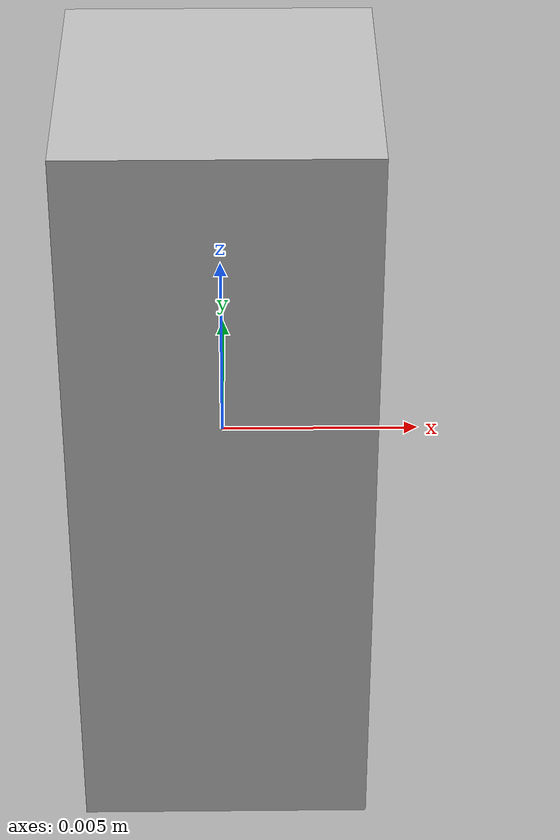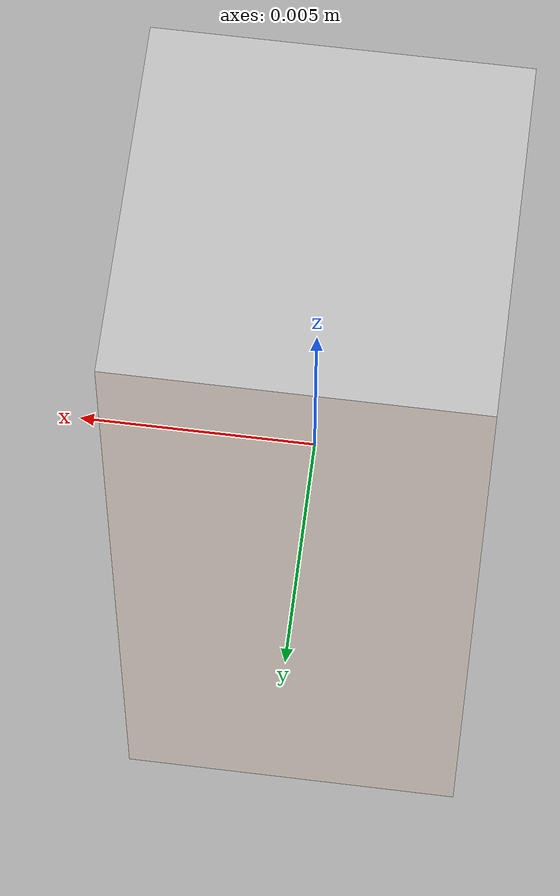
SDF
<?xml version="1.0" ?>
<sdf version="1.7">
  <model name="kingW">
    <static>0</static>
    <link name="link">

      <inertial>
        <mass>6.25</mass>
        <inertia>
          <ixx>0.046875</ixx>
          <ixy>0.0</ixy>
          <ixz>0.0</ixz>
          <iyy>0.046875</iyy>
          <iyz>0.0</iyz>
          <izz>0.03375</izz>
        </inertia>
      </inertial>

      <collision name="collision">
        <pose>0 0 0.3 0 0 0</pose>
          <geometry>
            <box>
              <size>0.15 0.15 0.6</size>
            </box>
          </geometry>
          <surface>
            <friction>
              <ode>
                <mu>30.0</mu>
                <mu2>30.0</mu2>
                <fdir1>0 0 0</fdir1>
              </ode>
            </friction>
            <contact>
              <ode>
                <kp>1000.0</kp>
                <kd>100.0</kd>
                <min_depth>0.001</min_depth>
                <max_vel>0.001</max_vel>
              </ode>
            </contact>
          </surface>
      </collision>

      <visual name="visual1">
        <pose>0 0 0 0 0 0</pose>
        <geometry>
          <mesh>
             <uri>model://kingW/meshes/kingW.dae</uri>
    		<!-- mesh scaled up 5x to reach 0.15m diameter from ~0.03m -->
	    <scale> 0.25 0.25 0.25 </scale>
          </mesh>
        </geometry>
      </visual>

      <velocity_decay>
        <linear>0.000000</linear>
        <angular>0.000000</angular>
      </velocity_decay>
      <self_collide>0</self_collide>
      <kinematic>0</kinematic>
      <gravity>1</gravity>
    </link>
  </model>
</sdf>
